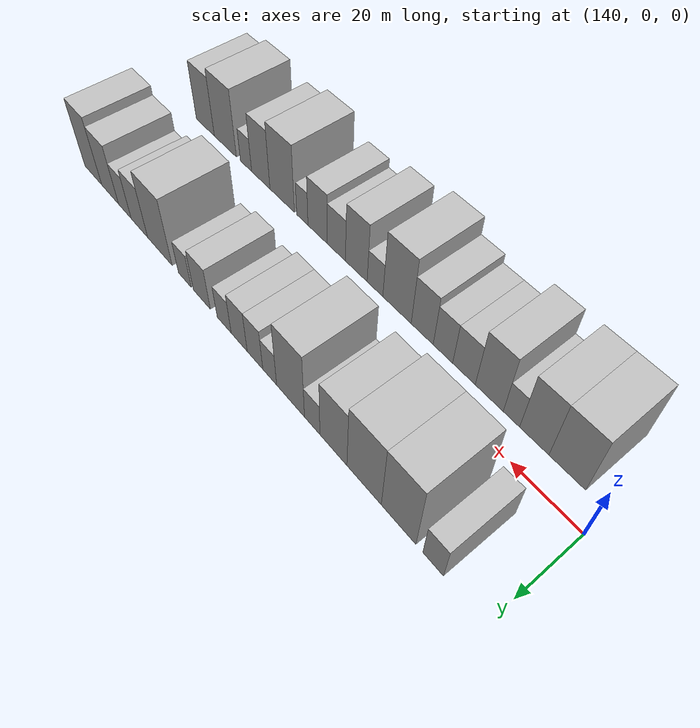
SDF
<sdf version="1.6">
 <world name="default">
  <model name="building_17">
   <static>1</static>
   <pose>154.4874 17.5000 0 0.000000 0.000000 1.570796</pose>
   <link name="link">
    <pose>0 0 6.00 0 0 0</pose>
    <collision name="collision"><geometry><box><size>20.0000 5.8762 12.0000</size></box></geometry></collision>
    <visual name="visual">
     <cast_shadows>0</cast_shadows>
     <geometry><box><size>20.0000 5.8762 12.0000</size></box></geometry>
     <material>
      <script>
       <uri>model://HANNAS_wall/materials/scripts</uri>
       <uri>model://HANNAS_wall/materials/textures</uri>
       <name>vrc/HANNAS_wall</name>
      </script>
     </material>
    </visual>
   </link>
  </model>
  <model name="building_18">
   <static>1</static>
   <pose>164.6580 17.5000 0 0.000000 0.000000 1.570796</pose>
   <link name="link">
    <pose>0 0 12.00 0 0 0</pose>
    <collision name="collision"><geometry><box><size>20.0000 10.4650 24.0000</size></box></geometry></collision>
    <visual name="visual">
     <cast_shadows>0</cast_shadows>
     <geometry><box><size>20.0000 10.4650 24.0000</size></box></geometry>
     <material>
      <script>
       <uri>model://HANNAS_wall/materials/scripts</uri>
       <uri>model://HANNAS_wall/materials/textures</uri>
       <name>vrc/HANNAS_wall</name>
      </script>
     </material>
    </visual>
   </link>
  </model>
  <model name="building_19">
   <static>1</static>
   <pose>175.4049 17.5000 0 0.000000 0.000000 1.570796</pose>
   <link name="link">
    <pose>0 0 12.00 0 0 0</pose>
    <collision name="collision"><geometry><box><size>20.0000 11.0287 24.0000</size></box></geometry></collision>
    <visual name="visual">
     <cast_shadows>0</cast_shadows>
     <geometry><box><size>20.0000 11.0287 24.0000</size></box></geometry>
     <material>
      <script>
       <uri>model://HANNAS_wall/materials/scripts</uri>
       <uri>model://HANNAS_wall/materials/textures</uri>
       <name>vrc/HANNAS_wall</name>
      </script>
     </material>
    </visual>
   </link>
  </model>
  <model name="building_20">
   <static>1</static>
   <pose>185.5153 17.5000 0 0.000000 0.000000 1.570796</pose>
   <link name="link">
    <pose>0 0 10.50 0 0 0</pose>
    <collision name="collision"><geometry><box><size>20.0000 9.1920 21.0000</size></box></geometry></collision>
    <visual name="visual">
     <cast_shadows>0</cast_shadows>
     <geometry><box><size>20.0000 9.1920 21.0000</size></box></geometry>
     <material>
      <script>
       <uri>model://HANNAS_wall/materials/scripts</uri>
       <uri>model://HANNAS_wall/materials/textures</uri>
       <name>vrc/HANNAS_wall</name>
      </script>
     </material>
    </visual>
   </link>
  </model>
  <model name="building_21">
   <static>1</static>
   <pose>192.8316 17.5000 0 0.000000 0.000000 1.570796</pose>
   <link name="link">
    <pose>0 0 6.00 0 0 0</pose>
    <collision name="collision"><geometry><box><size>20.0000 5.4407 12.0000</size></box></geometry></collision>
    <visual name="visual">
     <cast_shadows>0</cast_shadows>
     <geometry><box><size>20.0000 5.4407 12.0000</size></box></geometry>
     <material>
      <script>
       <uri>model://HANNAS_wall/materials/scripts</uri>
       <uri>model://HANNAS_wall/materials/textures</uri>
       <name>vrc/HANNAS_wall</name>
      </script>
     </material>
    </visual>
   </link>
  </model>
  <model name="building_22">
   <static>1</static>
   <pose>200.6947 17.5000 0 0.000000 0.000000 1.570796</pose>
   <link name="link">
    <pose>0 0 12.00 0 0 0</pose>
    <collision name="collision"><geometry><box><size>20.0000 10.2853 24.0000</size></box></geometry></collision>
    <visual name="visual">
     <cast_shadows>0</cast_shadows>
     <geometry><box><size>20.0000 10.2853 24.0000</size></box></geometry>
     <material>
      <script>
       <uri>model://HANNAS_wall/materials/scripts</uri>
       <uri>model://HANNAS_wall/materials/textures</uri>
       <name>vrc/HANNAS_wall</name>
      </script>
     </material>
    </visual>
   </link>
  </model>
  <model name="building_23">
   <static>1</static>
   <pose>208.5004 17.5000 0 0.000000 0.000000 1.570796</pose>
   <link name="link">
    <pose>0 0 6.00 0 0 0</pose>
    <collision name="collision"><geometry><box><size>20.0000 5.3262 12.0000</size></box></geometry></collision>
    <visual name="visual">
     <cast_shadows>0</cast_shadows>
     <geometry><box><size>20.0000 5.3262 12.0000</size></box></geometry>
     <material>
      <script>
       <uri>model://HANNAS_wall/materials/scripts</uri>
       <uri>model://HANNAS_wall/materials/textures</uri>
       <name>vrc/HANNAS_wall</name>
      </script>
     </material>
    </visual>
   </link>
  </model>
  <model name="building_24">
   <static>1</static>
   <pose>214.2465 17.5000 0 0.000000 0.000000 1.570796</pose>
   <link name="link">
    <pose>0 0 7.50 0 0 0</pose>
    <collision name="collision"><geometry><box><size>20.0000 6.1659 15.0000</size></box></geometry></collision>
    <visual name="visual">
     <cast_shadows>0</cast_shadows>
     <geometry><box><size>20.0000 6.1659 15.0000</size></box></geometry>
     <material>
      <script>
       <uri>model://HANNAS_wall/materials/scripts</uri>
       <uri>model://HANNAS_wall/materials/textures</uri>
       <name>vrc/HANNAS_wall</name>
      </script>
     </material>
    </visual>
   </link>
  </model>
  <model name="building_25">
   <static>1</static>
   <pose>220.6165 17.5000 0 0.000000 0.000000 1.570796</pose>
   <link name="link">
    <pose>0 0 7.50 0 0 0</pose>
    <collision name="collision"><geometry><box><size>20.0000 6.5742 15.0000</size></box></geometry></collision>
    <visual name="visual">
     <cast_shadows>0</cast_shadows>
     <geometry><box><size>20.0000 6.5742 15.0000</size></box></geometry>
     <material>
      <script>
       <uri>model://HANNAS_wall/materials/scripts</uri>
       <uri>model://HANNAS_wall/materials/textures</uri>
       <name>vrc/HANNAS_wall</name>
      </script>
     </material>
    </visual>
   </link>
  </model>
  <model name="building_26">
   <static>1</static>
   <pose>226.8721 17.5000 0 0.000000 0.000000 1.570796</pose>
   <link name="link">
    <pose>0 0 6.00 0 0 0</pose>
    <collision name="collision"><geometry><box><size>20.0000 5.9371 12.0000</size></box></geometry></collision>
    <visual name="visual">
     <cast_shadows>0</cast_shadows>
     <geometry><box><size>20.0000 5.9371 12.0000</size></box></geometry>
     <material>
      <script>
       <uri>model://HANNAS_wall/materials/scripts</uri>
       <uri>model://HANNAS_wall/materials/textures</uri>
       <name>vrc/HANNAS_wall</name>
      </script>
     </material>
    </visual>
   </link>
  </model>
  <model name="building_27">
   <static>1</static>
   <pose>236.5884 17.5000 0 0.000000 0.000000 1.570796</pose>
   <link name="link">
    <pose>0 0 7.50 0 0 0</pose>
    <collision name="collision"><geometry><box><size>20.0000 7.4955 15.0000</size></box></geometry></collision>
    <visual name="visual">
     <cast_shadows>0</cast_shadows>
     <geometry><box><size>20.0000 7.4955 15.0000</size></box></geometry>
     <material>
      <script>
       <uri>model://HANNAS_wall/materials/scripts</uri>
       <uri>model://HANNAS_wall/materials/textures</uri>
       <name>vrc/HANNAS_wall</name>
      </script>
     </material>
    </visual>
   </link>
  </model>
  <model name="building_28">
   <static>1</static>
   <pose>244.2812 17.5000 0 0.000000 0.000000 1.570796</pose>
   <link name="link">
    <pose>0 0 6.00 0 0 0</pose>
    <collision name="collision"><geometry><box><size>20.0000 5.8900 12.0000</size></box></geometry></collision>
    <visual name="visual">
     <cast_shadows>0</cast_shadows>
     <geometry><box><size>20.0000 5.8900 12.0000</size></box></geometry>
     <material>
      <script>
       <uri>model://HANNAS_wall/materials/scripts</uri>
       <uri>model://HANNAS_wall/materials/textures</uri>
       <name>vrc/HANNAS_wall</name>
      </script>
     </material>
    </visual>
   </link>
  </model>
  <model name="building_29">
   <static>1</static>
   <pose>256.1907 17.5000 0 0.000000 0.000000 1.570796</pose>
   <link name="link">
    <pose>0 0 12.00 0 0 0</pose>
    <collision name="collision"><geometry><box><size>20.0000 11.9292 24.0000</size></box></geometry></collision>
    <visual name="visual">
     <cast_shadows>0</cast_shadows>
     <geometry><box><size>20.0000 11.9292 24.0000</size></box></geometry>
     <material>
      <script>
       <uri>model://HANNAS_wall/materials/scripts</uri>
       <uri>model://HANNAS_wall/materials/textures</uri>
       <name>vrc/HANNAS_wall</name>
      </script>
     </material>
    </visual>
   </link>
  </model>
  <model name="building_30">
   <static>1</static>
   <pose>266.3586 17.5000 0 0.000000 0.000000 1.570796</pose>
   <link name="link">
    <pose>0 0 9.00 0 0 0</pose>
    <collision name="collision"><geometry><box><size>20.0000 8.4065 18.0000</size></box></geometry></collision>
    <visual name="visual">
     <cast_shadows>0</cast_shadows>
     <geometry><box><size>20.0000 8.4065 18.0000</size></box></geometry>
     <material>
      <script>
       <uri>model://HANNAS_wall/materials/scripts</uri>
       <uri>model://HANNAS_wall/materials/textures</uri>
       <name>vrc/HANNAS_wall</name>
      </script>
     </material>
    </visual>
   </link>
  </model>
  <model name="building_31">
   <static>1</static>
   <pose>273.8908 17.5000 0 0.000000 0.000000 1.570796</pose>
   <link name="link">
    <pose>0 0 7.50 0 0 0</pose>
    <collision name="collision"><geometry><box><size>20.0000 6.6580 15.0000</size></box></geometry></collision>
    <visual name="visual">
     <cast_shadows>0</cast_shadows>
     <geometry><box><size>20.0000 6.6580 15.0000</size></box></geometry>
     <material>
      <script>
       <uri>model://HANNAS_wall/materials/scripts</uri>
       <uri>model://HANNAS_wall/materials/textures</uri>
       <name>vrc/HANNAS_wall</name>
      </script>
     </material>
    </visual>
   </link>
  </model>
  <model name="building_32">
   <static>1</static>
   <pose>281.8167 17.5000 0 0.000000 0.000000 1.570796</pose>
   <link name="link">
    <pose>0 0 10.50 0 0 0</pose>
    <collision name="collision"><geometry><box><size>20.0000 9.1938 21.0000</size></box></geometry></collision>
    <visual name="visual">
     <cast_shadows>0</cast_shadows>
     <geometry><box><size>20.0000 9.1938 21.0000</size></box></geometry>
     <material>
      <script>
       <uri>model://HANNAS_wall/materials/scripts</uri>
       <uri>model://HANNAS_wall/materials/textures</uri>
       <name>vrc/HANNAS_wall</name>
      </script>
     </material>
    </visual>
   </link>
  </model>
  <model name="building_33">
   <static>1</static>
   <pose>291.2391 17.5000 0 0.000000 0.000000 1.570796</pose>
   <link name="link">
    <pose>0 0 12.00 0 0 0</pose>
    <collision name="collision"><geometry><box><size>20.0000 9.6509 24.0000</size></box></geometry></collision>
    <visual name="visual">
     <cast_shadows>0</cast_shadows>
     <geometry><box><size>20.0000 9.6509 24.0000</size></box></geometry>
     <material>
      <script>
       <uri>model://HANNAS_wall/materials/scripts</uri>
       <uri>model://HANNAS_wall/materials/textures</uri>
       <name>vrc/HANNAS_wall</name>
      </script>
     </material>
    </visual>
   </link>
  </model>
  <model name="building_50">
   <static>1</static>
   <pose>150.9649 -17.5000 0 0.000000 0.000000 1.570796</pose>
   <link name="link">
    <pose>0 0 10.50 0 0 0</pose>
    <collision name="collision"><geometry><box><size>20.0000 10.0803 21.0000</size></box></geometry></collision>
    <visual name="visual">
     <cast_shadows>0</cast_shadows>
     <geometry><box><size>20.0000 10.0803 21.0000</size></box></geometry>
     <material>
      <script>
       <uri>model://HANNAS_wall/materials/scripts</uri>
       <uri>model://HANNAS_wall/materials/textures</uri>
       <name>vrc/HANNAS_wall</name>
      </script>
     </material>
    </visual>
   </link>
  </model>
  <model name="building_51">
   <static>1</static>
   <pose>160.2238 -17.5000 0 0.000000 0.000000 1.570796</pose>
   <link name="link">
    <pose>0 0 10.50 0 0 0</pose>
    <collision name="collision"><geometry><box><size>20.0000 8.4376 21.0000</size></box></geometry></collision>
    <visual name="visual">
     <cast_shadows>0</cast_shadows>
     <geometry><box><size>20.0000 8.4376 21.0000</size></box></geometry>
     <material>
      <script>
       <uri>model://HANNAS_wall/materials/scripts</uri>
       <uri>model://HANNAS_wall/materials/textures</uri>
       <name>vrc/HANNAS_wall</name>
      </script>
     </material>
    </visual>
   </link>
  </model>
  <model name="building_52">
   <static>1</static>
   <pose>166.8938 -17.5000 0 0.000000 0.000000 1.570796</pose>
   <link name="link">
    <pose>0 0 6.00 0 0 0</pose>
    <collision name="collision"><geometry><box><size>20.0000 4.9023 12.0000</size></box></geometry></collision>
    <visual name="visual">
     <cast_shadows>0</cast_shadows>
     <geometry><box><size>20.0000 4.9023 12.0000</size></box></geometry>
     <material>
      <script>
       <uri>model://HANNAS_wall/materials/scripts</uri>
       <uri>model://HANNAS_wall/materials/textures</uri>
       <name>vrc/HANNAS_wall</name>
      </script>
     </material>
    </visual>
   </link>
  </model>
  <model name="building_53">
   <static>1</static>
   <pose>173.6735 -17.5000 0 0.000000 0.000000 1.570796</pose>
   <link name="link">
    <pose>0 0 10.50 0 0 0</pose>
    <collision name="collision"><geometry><box><size>20.0000 8.6571 21.0000</size></box></geometry></collision>
    <visual name="visual">
     <cast_shadows>0</cast_shadows>
     <geometry><box><size>20.0000 8.6571 21.0000</size></box></geometry>
     <material>
      <script>
       <uri>model://HANNAS_wall/materials/scripts</uri>
       <uri>model://HANNAS_wall/materials/textures</uri>
       <name>vrc/HANNAS_wall</name>
      </script>
     </material>
    </visual>
   </link>
  </model>
  <model name="building_54">
   <static>1</static>
   <pose>181.6540 -17.5000 0 0.000000 0.000000 1.570796</pose>
   <link name="link">
    <pose>0 0 7.50 0 0 0</pose>
    <collision name="collision"><geometry><box><size>20.0000 7.3039 15.0000</size></box></geometry></collision>
    <visual name="visual">
     <cast_shadows>0</cast_shadows>
     <geometry><box><size>20.0000 7.3039 15.0000</size></box></geometry>
     <material>
      <script>
       <uri>model://HANNAS_wall/materials/scripts</uri>
       <uri>model://HANNAS_wall/materials/textures</uri>
       <name>vrc/HANNAS_wall</name>
      </script>
     </material>
    </visual>
   </link>
  </model>
  <model name="building_55">
   <static>1</static>
   <pose>188.5613 -17.5000 0 0.000000 0.000000 1.570796</pose>
   <link name="link">
    <pose>0 0 7.50 0 0 0</pose>
    <collision name="collision"><geometry><box><size>20.0000 6.5108 15.0000</size></box></geometry></collision>
    <visual name="visual">
     <cast_shadows>0</cast_shadows>
     <geometry><box><size>20.0000 6.5108 15.0000</size></box></geometry>
     <material>
      <script>
       <uri>model://HANNAS_wall/materials/scripts</uri>
       <uri>model://HANNAS_wall/materials/textures</uri>
       <name>vrc/HANNAS_wall</name>
      </script>
     </material>
    </visual>
   </link>
  </model>
  <model name="building_56">
   <static>1</static>
   <pose>195.6428 -17.5000 0 0.000000 0.000000 1.570796</pose>
   <link name="link">
    <pose>0 0 9.00 0 0 0</pose>
    <collision name="collision"><geometry><box><size>20.0000 7.6523 18.0000</size></box></geometry></collision>
    <visual name="visual">
     <cast_shadows>0</cast_shadows>
     <geometry><box><size>20.0000 7.6523 18.0000</size></box></geometry>
     <material>
      <script>
       <uri>model://HANNAS_wall/materials/scripts</uri>
       <uri>model://HANNAS_wall/materials/textures</uri>
       <name>vrc/HANNAS_wall</name>
      </script>
     </material>
    </visual>
   </link>
  </model>
  <model name="building_57">
   <static>1</static>
   <pose>204.6172 -17.5000 0 0.000000 0.000000 1.570796</pose>
   <link name="link">
    <pose>0 0 12.00 0 0 0</pose>
    <collision name="collision"><geometry><box><size>20.0000 10.2966 24.0000</size></box></geometry></collision>
    <visual name="visual">
     <cast_shadows>0</cast_shadows>
     <geometry><box><size>20.0000 10.2966 24.0000</size></box></geometry>
     <material>
      <script>
       <uri>model://HANNAS_wall/materials/scripts</uri>
       <uri>model://HANNAS_wall/materials/textures</uri>
       <name>vrc/HANNAS_wall</name>
      </script>
     </material>
    </visual>
   </link>
  </model>
  <model name="building_58">
   <static>1</static>
   <pose>212.7248 -17.5000 0 0.000000 0.000000 1.570796</pose>
   <link name="link">
    <pose>0 0 6.00 0 0 0</pose>
    <collision name="collision"><geometry><box><size>20.0000 5.9185 12.0000</size></box></geometry></collision>
    <visual name="visual">
     <cast_shadows>0</cast_shadows>
     <geometry><box><size>20.0000 5.9185 12.0000</size></box></geometry>
     <material>
      <script>
       <uri>model://HANNAS_wall/materials/scripts</uri>
       <uri>model://HANNAS_wall/materials/textures</uri>
       <name>vrc/HANNAS_wall</name>
      </script>
     </material>
    </visual>
   </link>
  </model>
  <model name="building_59">
   <static>1</static>
   <pose>219.9410 -17.5000 0 0.000000 0.000000 1.570796</pose>
   <link name="link">
    <pose>0 0 10.50 0 0 0</pose>
    <collision name="collision"><geometry><box><size>20.0000 8.5139 21.0000</size></box></geometry></collision>
    <visual name="visual">
     <cast_shadows>0</cast_shadows>
     <geometry><box><size>20.0000 8.5139 21.0000</size></box></geometry>
     <material>
      <script>
       <uri>model://HANNAS_wall/materials/scripts</uri>
       <uri>model://HANNAS_wall/materials/textures</uri>
       <name>vrc/HANNAS_wall</name>
      </script>
     </material>
    </visual>
   </link>
  </model>
  <model name="building_60">
   <static>1</static>
   <pose>227.8813 -17.5000 0 0.000000 0.000000 1.570796</pose>
   <link name="link">
    <pose>0 0 7.50 0 0 0</pose>
    <collision name="collision"><geometry><box><size>20.0000 7.3666 15.0000</size></box></geometry></collision>
    <visual name="visual">
     <cast_shadows>0</cast_shadows>
     <geometry><box><size>20.0000 7.3666 15.0000</size></box></geometry>
     <material>
      <script>
       <uri>model://HANNAS_wall/materials/scripts</uri>
       <uri>model://HANNAS_wall/materials/textures</uri>
       <name>vrc/HANNAS_wall</name>
      </script>
     </material>
    </visual>
   </link>
  </model>
  <model name="building_61">
   <static>1</static>
   <pose>235.6127 -17.5000 0 0.000000 0.000000 1.570796</pose>
   <link name="link">
    <pose>0 0 9.00 0 0 0</pose>
    <collision name="collision"><geometry><box><size>20.0000 8.0962 18.0000</size></box></geometry></collision>
    <visual name="visual">
     <cast_shadows>0</cast_shadows>
     <geometry><box><size>20.0000 8.0962 18.0000</size></box></geometry>
     <material>
      <script>
       <uri>model://HANNAS_wall/materials/scripts</uri>
       <uri>model://HANNAS_wall/materials/textures</uri>
       <name>vrc/HANNAS_wall</name>
      </script>
     </material>
    </visual>
   </link>
  </model>
  <model name="building_62">
   <static>1</static>
   <pose>242.1001 -17.5000 0 0.000000 0.000000 1.570796</pose>
   <link name="link">
    <pose>0 0 6.00 0 0 0</pose>
    <collision name="collision"><geometry><box><size>20.0000 4.8787 12.0000</size></box></geometry></collision>
    <visual name="visual">
     <cast_shadows>0</cast_shadows>
     <geometry><box><size>20.0000 4.8787 12.0000</size></box></geometry>
     <material>
      <script>
       <uri>model://HANNAS_wall/materials/scripts</uri>
       <uri>model://HANNAS_wall/materials/textures</uri>
       <name>vrc/HANNAS_wall</name>
      </script>
     </material>
    </visual>
   </link>
  </model>
  <model name="building_63">
   <static>1</static>
   <pose>251.0512 -17.5000 0 0.000000 0.000000 1.570796</pose>
   <link name="link">
    <pose>0 0 12.00 0 0 0</pose>
    <collision name="collision"><geometry><box><size>20.0000 11.0233 24.0000</size></box></geometry></collision>
    <visual name="visual">
     <cast_shadows>0</cast_shadows>
     <geometry><box><size>20.0000 11.0233 24.0000</size></box></geometry>
     <material>
      <script>
       <uri>model://HANNAS_wall/materials/scripts</uri>
       <uri>model://HANNAS_wall/materials/textures</uri>
       <name>vrc/HANNAS_wall</name>
      </script>
     </material>
    </visual>
   </link>
  </model>
  <model name="building_64">
   <static>1</static>
   <pose>260.8749 -17.5000 0 0.000000 0.000000 1.570796</pose>
   <link name="link">
    <pose>0 0 10.50 0 0 0</pose>
    <collision name="collision"><geometry><box><size>20.0000 8.6241 21.0000</size></box></geometry></collision>
    <visual name="visual">
     <cast_shadows>0</cast_shadows>
     <geometry><box><size>20.0000 8.6241 21.0000</size></box></geometry>
     <material>
      <script>
       <uri>model://HANNAS_wall/materials/scripts</uri>
       <uri>model://HANNAS_wall/materials/textures</uri>
       <name>vrc/HANNAS_wall</name>
      </script>
     </material>
    </visual>
   </link>
  </model>
  <model name="building_65">
   <static>1</static>
   <pose>267.8961 -17.5000 0 0.000000 0.000000 1.570796</pose>
   <link name="link">
    <pose>0 0 6.00 0 0 0</pose>
    <collision name="collision"><geometry><box><size>20.0000 5.4183 12.0000</size></box></geometry></collision>
    <visual name="visual">
     <cast_shadows>0</cast_shadows>
     <geometry><box><size>20.0000 5.4183 12.0000</size></box></geometry>
     <material>
      <script>
       <uri>model://HANNAS_wall/materials/scripts</uri>
       <uri>model://HANNAS_wall/materials/textures</uri>
       <name>vrc/HANNAS_wall</name>
      </script>
     </material>
    </visual>
   </link>
  </model>
  <model name="building_66">
   <static>1</static>
   <pose>278.1822 -17.5000 0 0.000000 0.000000 1.570796</pose>
   <link name="link">
    <pose>0 0 12.00 0 0 0</pose>
    <collision name="collision"><geometry><box><size>20.0000 11.1540 24.0000</size></box></geometry></collision>
    <visual name="visual">
     <cast_shadows>0</cast_shadows>
     <geometry><box><size>20.0000 11.1540 24.0000</size></box></geometry>
     <material>
      <script>
       <uri>model://HANNAS_wall/materials/scripts</uri>
       <uri>model://HANNAS_wall/materials/textures</uri>
       <name>vrc/HANNAS_wall</name>
      </script>
     </material>
    </visual>
   </link>
  </model>
  <model name="building_67">
   <static>1</static>
   <pose>288.5028 -17.5000 0 0.000000 0.000000 1.570796</pose>
   <link name="link">
    <pose>0 0 10.50 0 0 0</pose>
    <collision name="collision"><geometry><box><size>20.0000 9.4871 21.0000</size></box></geometry></collision>
    <visual name="visual">
     <cast_shadows>0</cast_shadows>
     <geometry><box><size>20.0000 9.4871 21.0000</size></box></geometry>
     <material>
      <script>
       <uri>model://HANNAS_wall/materials/scripts</uri>
       <uri>model://HANNAS_wall/materials/textures</uri>
       <name>vrc/HANNAS_wall</name>
      </script>
     </material>
    </visual>
   </link>
  </model>
 </world>
</sdf>
